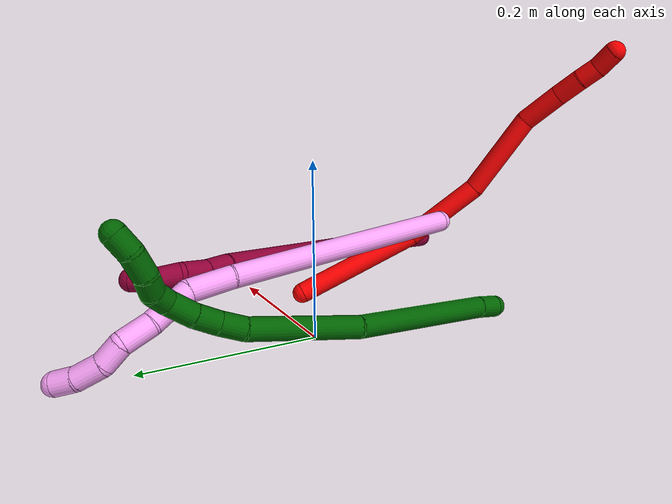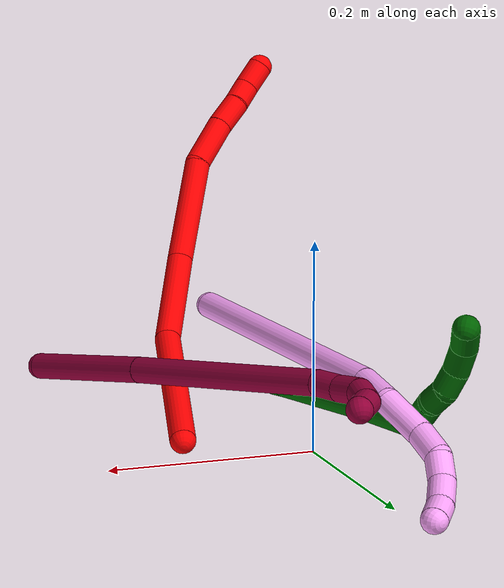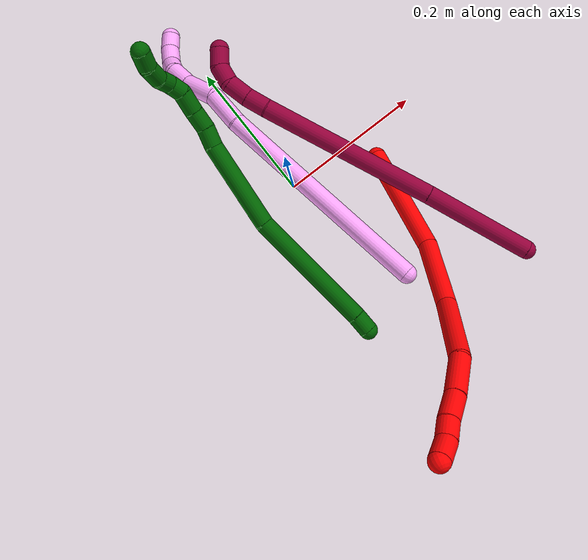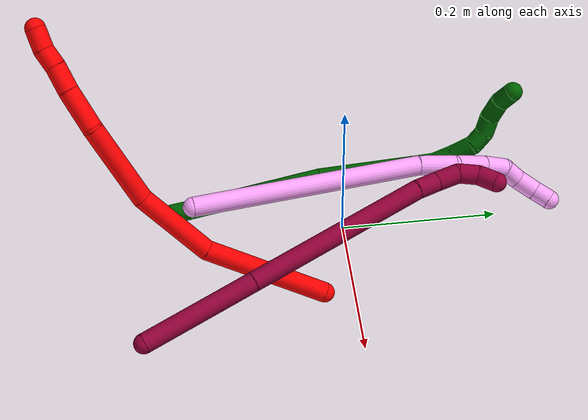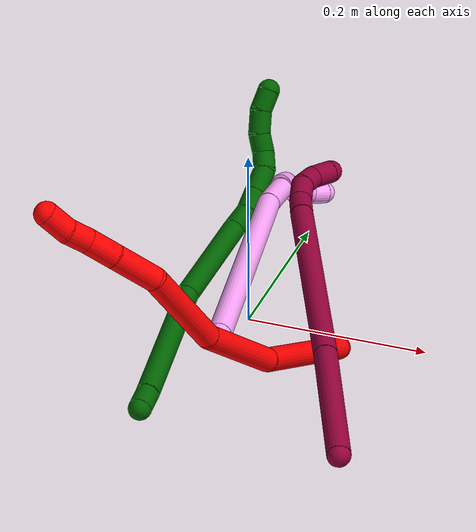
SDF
<sdf version="1.7">
 <world name="default">
  <model name="photoneo_s_sensor">
   <static>1</static>
   <pose>0 0 2 1.57079 1.57079 3.14159</pose>
   <link name="link">
    <inertial><mass>0.1</mass></inertial>
    <sensor name="sensor" type="depth">
     <update_rate>30</update_rate>
     <camera>
      <horizontal_fov>1.22</horizontal_fov>
      <image><width>1920</width><height>1200</height><format>B8G8R8</format></image>
      <clip><near>0.1</near><far>4</far></clip>
      <depth_camera><output>points</output></depth_camera>
     </camera>
     <plugin name="camera_plugin" filename="libgazebo_ros_depth_camera.so">
      <baseline>0.2</baseline>
      <alwaysOn>1</alwaysOn>
      <updateRate>0.0</updateRate>
      <cameraName>camera_ir</cameraName>
      <imageTopicName>/camera/color/image_raw</imageTopicName>
      <cameraInfoTopicName>/camera/color/camera_info</cameraInfoTopicName>
      <depthImageTopicName>/camera/depth/image_raw</depthImageTopicName>
      <depthImageCameraInfoTopicName>/camera/depth/camera_info</depthImageCameraInfoTopicName>
      <pointCloudTopicName>/camera/depth/points</pointCloudTopicName>
      <frameName>fr_optical</frameName>
      <pointCloudCutoff>0.1</pointCloudCutoff>
      <pointCloudCutoffMax>2.0</pointCloudCutoffMax>
      <distortionK1>0</distortionK1>
      <distortionK2>0</distortionK2>
      <distortionK3>0</distortionK3>
      <distortionT1>0</distortionT1>
      <distortionT2>0</distortionT2>
      <CxPrime>0</CxPrime>
      <Cx>0</Cx>
      <Cy>0</Cy>
      <focalLength>0</focalLength>
      <hackBaseline>0</hackBaseline>
     </plugin>
    </sensor>
   </link>
  </model>
  <model name="2">
   <static>0</static>
   <link name="2">
    <collision name="collision-cylinder-e_1_1_4">
     <pose>0.000123 0.001715 0.078644 -0.021802 0.001563 -1.7e-05</pose>
     <geometry><cylinder><radius>0.0125</radius><length>0.157325</length></cylinder></geometry>
     <surface>
      <friction><ode><mu>1.16</mu><mu2>1.16</mu2><slip1>0</slip1><slip2>0</slip2></ode></friction>
      <contact><ode><kp>1e+06</kp><kd>1</kd><max_vel>0</max_vel><min_depth>0.001</min_depth></ode></contact>
     </surface>
    </collision>
    <visual name="visual-cylinder-e_1_1_4">
     <pose>0.000123 0.001715 0.078644 -0.021802 0.001563 -1.7e-05</pose>
     <geometry><cylinder><radius>0.0125</radius><length>0.157325</length></cylinder></geometry>
     <material><ambient>1 0 0 1</ambient></material>
    </visual>
    <collision name="collision-cylinder-e_2_4_5">
     <pose>-0.004645 -0.011169 0.205609 0.293395 -0.096586 -0.014282</pose>
     <geometry><cylinder><radius>0.0125</radius><length>0.10143</length></cylinder></geometry>
     <surface>
      <friction><ode><mu>1.16</mu><mu2>1.16</mu2><slip1>0</slip1><slip2>0</slip2></ode></friction>
      <contact><ode><kp>1e+06</kp><kd>1</kd><max_vel>0</max_vel><min_depth>0.001</min_depth></ode></contact>
     </surface>
    </collision>
    <visual name="visual-cylinder-e_2_4_5">
     <pose>-0.004645 -0.011169 0.205609 0.293395 -0.096586 -0.014282</pose>
     <geometry><cylinder><radius>0.0125</radius><length>0.10143</length></cylinder></geometry>
     <material><ambient>1 0 0 1</ambient></material>
    </visual>
    <collision name="collision-cylinder-e_3_5_6">
     <pose>-0.026371 -0.051005 0.297753 0.522515 -0.321368 -0.086617</pose>
     <geometry><cylinder><radius>0.0125</radius><length>0.106598</length></cylinder></geometry>
     <surface>
      <friction><ode><mu>1.16</mu><mu2>1.16</mu2><slip1>0</slip1><slip2>0</slip2></ode></friction>
      <contact><ode><kp>1e+06</kp><kd>1</kd><max_vel>0</max_vel><min_depth>0.001</min_depth></ode></contact>
     </surface>
    </collision>
    <visual name="visual-cylinder-e_3_5_6">
     <pose>-0.026371 -0.051005 0.297753 0.522515 -0.321368 -0.086617</pose>
     <geometry><cylinder><radius>0.0125</radius><length>0.106598</length></cylinder></geometry>
     <material><ambient>1 0 0 1</ambient></material>
    </visual>
    <collision name="collision-cylinder-e_4_6_7">
     <pose>-0.043287 -0.091571 0.36221 0.638892 -0.003131 -0.001036</pose>
     <geometry><cylinder><radius>0.0125</radius><length>0.051409</length></cylinder></geometry>
     <surface>
      <friction><ode><mu>1.16</mu><mu2>1.16</mu2><slip1>0</slip1><slip2>0</slip2></ode></friction>
      <contact><ode><kp>1e+06</kp><kd>1</kd><max_vel>0</max_vel><min_depth>0.001</min_depth></ode></contact>
     </surface>
    </collision>
    <visual name="visual-cylinder-e_4_6_7">
     <pose>-0.043287 -0.091571 0.36221 0.638892 -0.003131 -0.001036</pose>
     <geometry><cylinder><radius>0.0125</radius><length>0.051409</length></cylinder></geometry>
     <material><ambient>1 0 0 1</ambient></material>
    </visual>
    <collision name="collision-cylinder-e_5_7_8">
     <pose>-0.042567 -0.117716 0.394918 0.730582 0.049312 0.018863</pose>
     <geometry><cylinder><radius>0.0125</radius><length>0.032462</length></cylinder></geometry>
     <surface>
      <friction><ode><mu>1.16</mu><mu2>1.16</mu2><slip1>0</slip1><slip2>0</slip2></ode></friction>
      <contact><ode><kp>1e+06</kp><kd>1</kd><max_vel>0</max_vel><min_depth>0.001</min_depth></ode></contact>
     </surface>
    </collision>
    <visual name="visual-cylinder-e_5_7_8">
     <pose>-0.042567 -0.117716 0.394918 0.730582 0.049312 0.018863</pose>
     <geometry><cylinder><radius>0.0125</radius><length>0.032462</length></cylinder></geometry>
     <material><ambient>1 0 0 1</ambient></material>
    </visual>
    <collision name="collision-cylinder-e_6_8_9">
     <pose>-0.04125 -0.135214 0.416818 0.597041 0.043469 0.013378</pose>
     <geometry><cylinder><radius>0.0125</radius><length>0.023786</length></cylinder></geometry>
     <surface>
      <friction><ode><mu>1.16</mu><mu2>1.16</mu2><slip1>0</slip1><slip2>0</slip2></ode></friction>
      <contact><ode><kp>1e+06</kp><kd>1</kd><max_vel>0</max_vel><min_depth>0.001</min_depth></ode></contact>
     </surface>
    </collision>
    <visual name="visual-cylinder-e_6_8_9">
     <pose>-0.04125 -0.135214 0.416818 0.597041 0.043469 0.013378</pose>
     <geometry><cylinder><radius>0.0125</radius><length>0.023786</length></cylinder></geometry>
     <material><ambient>1 0 0 1</ambient></material>
    </visual>
    <collision name="collision-cylinder-e_7_9_2">
     <pose>-0.041769 -0.15179 0.435761 0.826381 -0.076819 -0.033693</pose>
     <geometry><cylinder><radius>0.0125</radius><length>0.02699</length></cylinder></geometry>
     <surface>
      <friction><ode><mu>1.16</mu><mu2>1.16</mu2><slip1>0</slip1><slip2>0</slip2></ode></friction>
      <contact><ode><kp>1e+06</kp><kd>1</kd><max_vel>0</max_vel><min_depth>0.001</min_depth></ode></contact>
     </surface>
    </collision>
    <visual name="visual-cylinder-e_7_9_2">
     <pose>-0.041769 -0.15179 0.435761 0.826381 -0.076819 -0.033693</pose>
     <geometry><cylinder><radius>0.0125</radius><length>0.02699</length></cylinder></geometry>
     <material><ambient>1 0 0 1</ambient></material>
    </visual>
    <collision name="collision-sphere-2">
     <pose>-0.042805 -0.161686 0.444878 0 -0 0</pose>
     <geometry><sphere><radius>0.0125</radius></sphere></geometry>
     <surface>
      <friction><ode><mu>1.16</mu><mu2>1.16</mu2><slip1>0</slip1><slip2>0</slip2></ode></friction>
      <contact><ode><kp>1e+06</kp><kd>1</kd><max_vel>0</max_vel><min_depth>0.001</min_depth></ode></contact>
     </surface>
    </collision>
    <visual name="visual-sphere-2">
     <pose>-0.042805 -0.161686 0.444878 0 -0 0</pose>
     <geometry><sphere><radius>0.0125</radius></sphere></geometry>
     <material><ambient>1 0 0 1</ambient></material>
    </visual>
    <collision name="collision-sphere-9">
     <pose>-0.040733 -0.141894 0.426645 0 -0 0</pose>
     <geometry><sphere><radius>0.0125</radius></sphere></geometry>
     <surface>
      <friction><ode><mu>1.16</mu><mu2>1.16</mu2><slip1>0</slip1><slip2>0</slip2></ode></friction>
      <contact><ode><kp>1e+06</kp><kd>1</kd><max_vel>0</max_vel><min_depth>0.001</min_depth></ode></contact>
     </surface>
    </collision>
    <visual name="visual-sphere-9">
     <pose>-0.040733 -0.141894 0.426645 0 -0 0</pose>
     <geometry><sphere><radius>0.0125</radius></sphere></geometry>
     <material><ambient>1 0 0 1</ambient></material>
    </visual>
    <collision name="collision-sphere-4">
     <pose>0.000246 0.00343 0.157287 0 -0 0</pose>
     <geometry><sphere><radius>0.0125</radius></sphere></geometry>
     <surface>
      <friction><ode><mu>1.16</mu><mu2>1.16</mu2><slip1>0</slip1><slip2>0</slip2></ode></friction>
      <contact><ode><kp>1e+06</kp><kd>1</kd><max_vel>0</max_vel><min_depth>0.001</min_depth></ode></contact>
     </surface>
    </collision>
    <visual name="visual-sphere-4">
     <pose>0.000246 0.00343 0.157287 0 -0 0</pose>
     <geometry><sphere><radius>0.0125</radius></sphere></geometry>
     <material><ambient>1 0 0 1</ambient></material>
    </visual>
    <collision name="collision-sphere-1">
     <geometry><sphere><radius>0.0125</radius></sphere></geometry>
     <surface>
      <friction><ode><mu>1.16</mu><mu2>1.16</mu2><slip1>0</slip1><slip2>0</slip2></ode></friction>
      <contact><ode><kp>1e+06</kp><kd>1</kd><max_vel>0</max_vel><min_depth>0.001</min_depth></ode></contact>
     </surface>
    </collision>
    <visual name="visual-sphere-1">
     <geometry><sphere><radius>0.0125</radius></sphere></geometry>
     <material><ambient>1 0 0 1</ambient></material>
    </visual>
    <collision name="collision-sphere-8">
     <pose>-0.041767 -0.128534 0.406992 0 -0 0</pose>
     <geometry><sphere><radius>0.0125</radius></sphere></geometry>
     <surface>
      <friction><ode><mu>1.16</mu><mu2>1.16</mu2><slip1>0</slip1><slip2>0</slip2></ode></friction>
      <contact><ode><kp>1e+06</kp><kd>1</kd><max_vel>0</max_vel><min_depth>0.001</min_depth></ode></contact>
     </surface>
    </collision>
    <visual name="visual-sphere-8">
     <pose>-0.041767 -0.128534 0.406992 0 -0 0</pose>
     <geometry><sphere><radius>0.0125</radius></sphere></geometry>
     <material><ambient>1 0 0 1</ambient></material>
    </visual>
    <collision name="collision-sphere-5">
     <pose>-0.009536 -0.025768 0.253931 0 -0 0</pose>
     <geometry><sphere><radius>0.0125</radius></sphere></geometry>
     <surface>
      <friction><ode><mu>1.16</mu><mu2>1.16</mu2><slip1>0</slip1><slip2>0</slip2></ode></friction>
      <contact><ode><kp>1e+06</kp><kd>1</kd><max_vel>0</max_vel><min_depth>0.001</min_depth></ode></contact>
     </surface>
    </collision>
    <visual name="visual-sphere-5">
     <pose>-0.009536 -0.025768 0.253931 0 -0 0</pose>
     <geometry><sphere><radius>0.0125</radius></sphere></geometry>
     <material><ambient>1 0 0 1</ambient></material>
    </visual>
    <collision name="collision-sphere-6">
     <pose>-0.043206 -0.076243 0.341576 0 -0 0</pose>
     <geometry><sphere><radius>0.0125</radius></sphere></geometry>
     <surface>
      <friction><ode><mu>1.16</mu><mu2>1.16</mu2><slip1>0</slip1><slip2>0</slip2></ode></friction>
      <contact><ode><kp>1e+06</kp><kd>1</kd><max_vel>0</max_vel><min_depth>0.001</min_depth></ode></contact>
     </surface>
    </collision>
    <visual name="visual-sphere-6">
     <pose>-0.043206 -0.076243 0.341576 0 -0 0</pose>
     <geometry><sphere><radius>0.0125</radius></sphere></geometry>
     <material><ambient>1 0 0 1</ambient></material>
    </visual>
    <collision name="collision-sphere-7">
     <pose>-0.043367 -0.106898 0.382844 0 -0 0</pose>
     <geometry><sphere><radius>0.0125</radius></sphere></geometry>
     <surface>
      <friction><ode><mu>1.16</mu><mu2>1.16</mu2><slip1>0</slip1><slip2>0</slip2></ode></friction>
      <contact><ode><kp>1e+06</kp><kd>1</kd><max_vel>0</max_vel><min_depth>0.001</min_depth></ode></contact>
     </surface>
    </collision>
    <visual name="visual-sphere-7">
     <pose>-0.043367 -0.106898 0.382844 0 -0 0</pose>
     <geometry><sphere><radius>0.0125</radius></sphere></geometry>
     <material><ambient>1 0 0 1</ambient></material>
    </visual>
    <inertial>
     <pose>-0.017957 -0.044284 0.236168 0 -0 0</pose>
     <mass>0.5</mass>
     <inertia>
      <ixx>0.000529</ixx>
      <ixy>0</ixy>
      <ixz>0</ixz>
      <iyy>0.000505</iyy>
      <iyz>0</iyz>
      <izz>0.000159</izz>
     </inertia>
    </inertial>
   </link>
   <pose>0.115533 -0.038536 0.011485 -0.89335 0.852437 -2.83342</pose>
  </model>
  <model name="4">
   <static>0</static>
   <link name="4">
    <collision name="collision-cylinder-e_1_1_4">
     <pose>0.012036 0.01284 0.14572 -0.087888 0.082094 -0.003612</pose>
     <geometry><cylinder><radius>0.0125</radius><length>0.293558</length></cylinder></geometry>
     <surface>
      <friction><ode><mu>1.16</mu><mu2>1.16</mu2><slip1>0</slip1><slip2>0</slip2></ode></friction>
      <contact><ode><kp>1e+06</kp><kd>1</kd><max_vel>0</max_vel><min_depth>0.001</min_depth></ode></contact>
     </surface>
    </collision>
    <visual name="visual-cylinder-e_1_1_4">
     <pose>0.012036 0.01284 0.14572 -0.087888 0.082094 -0.003612</pose>
     <geometry><cylinder><radius>0.0125</radius><length>0.293558</length></cylinder></geometry>
     <material><ambient>1 0.65098 0.996078 1</ambient></material>
    </visual>
    <collision name="collision-cylinder-e_2_4_5">
     <pose>0.026381 0.031629 0.314626 -0.251166 0.096152 -0.012148</pose>
     <geometry><cylinder><radius>0.0125</radius><length>0.048094</length></cylinder></geometry>
     <surface>
      <friction><ode><mu>1.16</mu><mu2>1.16</mu2><slip1>0</slip1><slip2>0</slip2></ode></friction>
      <contact><ode><kp>1e+06</kp><kd>1</kd><max_vel>0</max_vel><min_depth>0.001</min_depth></ode></contact>
     </surface>
    </collision>
    <visual name="visual-cylinder-e_2_4_5">
     <pose>0.026381 0.031629 0.314626 -0.251166 0.096152 -0.012148</pose>
     <geometry><cylinder><radius>0.0125</radius><length>0.048094</length></cylinder></geometry>
     <material><ambient>1 0.65098 0.996078 1</ambient></material>
    </visual>
    <collision name="collision-cylinder-e_3_5_6">
     <pose>0.020673 0.043043 0.36016 -0.239829 -0.335284 0.040776</pose>
     <geometry><cylinder><radius>0.0125</radius><length>0.048729</length></cylinder></geometry>
     <surface>
      <friction><ode><mu>1.16</mu><mu2>1.16</mu2><slip1>0</slip1><slip2>0</slip2></ode></friction>
      <contact><ode><kp>1e+06</kp><kd>1</kd><max_vel>0</max_vel><min_depth>0.001</min_depth></ode></contact>
     </surface>
    </collision>
    <visual name="visual-cylinder-e_3_5_6">
     <pose>0.020673 0.043043 0.36016 -0.239829 -0.335284 0.040776</pose>
     <geometry><cylinder><radius>0.0125</radius><length>0.048729</length></cylinder></geometry>
     <material><ambient>1 0.65098 0.996078 1</ambient></material>
    </visual>
    <collision name="collision-cylinder-e_4_6_7">
     <pose>0.010184 0.054221 0.397692 -0.359828 -0.151247 0.02756</pose>
     <geometry><cylinder><radius>0.0125</radius><length>0.032819</length></cylinder></geometry>
     <surface>
      <friction><ode><mu>1.16</mu><mu2>1.16</mu2><slip1>0</slip1><slip2>0</slip2></ode></friction>
      <contact><ode><kp>1e+06</kp><kd>1</kd><max_vel>0</max_vel><min_depth>0.001</min_depth></ode></contact>
     </surface>
    </collision>
    <visual name="visual-cylinder-e_4_6_7">
     <pose>0.010184 0.054221 0.397692 -0.359828 -0.151247 0.02756</pose>
     <geometry><cylinder><radius>0.0125</radius><length>0.032819</length></cylinder></geometry>
     <material><ambient>1 0.65098 0.996078 1</ambient></material>
    </visual>
    <collision name="collision-cylinder-e_5_7_8">
     <pose>0.004078 0.068929 0.420883 -0.843443 -0.292974 0.132195</pose>
     <geometry><cylinder><radius>0.0125</radius><length>0.02516</length></cylinder></geometry>
     <surface>
      <friction><ode><mu>1.16</mu><mu2>1.16</mu2><slip1>0</slip1><slip2>0</slip2></ode></friction>
      <contact><ode><kp>1e+06</kp><kd>1</kd><max_vel>0</max_vel><min_depth>0.001</min_depth></ode></contact>
     </surface>
    </collision>
    <visual name="visual-cylinder-e_5_7_8">
     <pose>0.004078 0.068929 0.420883 -0.843443 -0.292974 0.132195</pose>
     <geometry><cylinder><radius>0.0125</radius><length>0.02516</length></cylinder></geometry>
     <material><ambient>1 0.65098 0.996078 1</ambient></material>
    </visual>
    <collision name="collision-cylinder-e_6_8_9">
     <pose>0.001735 0.088645 0.438579 -0.835964 0.089056 -0.039576</pose>
     <geometry><cylinder><radius>0.0125</radius><length>0.029013</length></cylinder></geometry>
     <surface>
      <friction><ode><mu>1.16</mu><mu2>1.16</mu2><slip1>0</slip1><slip2>0</slip2></ode></friction>
      <contact><ode><kp>1e+06</kp><kd>1</kd><max_vel>0</max_vel><min_depth>0.001</min_depth></ode></contact>
     </surface>
    </collision>
    <visual name="visual-cylinder-e_6_8_9">
     <pose>0.001735 0.088645 0.438579 -0.835964 0.089056 -0.039576</pose>
     <geometry><cylinder><radius>0.0125</radius><length>0.029013</length></cylinder></geometry>
     <material><ambient>1 0.65098 0.996078 1</ambient></material>
    </visual>
    <collision name="collision-cylinder-e_7_9_2">
     <pose>0.006876 0.107608 0.454991 -0.886469 0.347329 -0.166185</pose>
     <geometry><cylinder><radius>0.0125</radius><length>0.022627</length></cylinder></geometry>
     <surface>
      <friction><ode><mu>1.16</mu><mu2>1.16</mu2><slip1>0</slip1><slip2>0</slip2></ode></friction>
      <contact><ode><kp>1e+06</kp><kd>1</kd><max_vel>0</max_vel><min_depth>0.001</min_depth></ode></contact>
     </surface>
    </collision>
    <visual name="visual-cylinder-e_7_9_2">
     <pose>0.006876 0.107608 0.454991 -0.886469 0.347329 -0.166185</pose>
     <geometry><cylinder><radius>0.0125</radius><length>0.022627</length></cylinder></geometry>
     <material><ambient>1 0.65098 0.996078 1</ambient></material>
    </visual>
    <collision name="collision-sphere-2">
     <pose>0.010727 0.115851 0.461716 0 -0 0</pose>
     <geometry><sphere><radius>0.0125</radius></sphere></geometry>
     <surface>
      <friction><ode><mu>1.16</mu><mu2>1.16</mu2><slip1>0</slip1><slip2>0</slip2></ode></friction>
      <contact><ode><kp>1e+06</kp><kd>1</kd><max_vel>0</max_vel><min_depth>0.001</min_depth></ode></contact>
     </surface>
    </collision>
    <visual name="visual-sphere-2">
     <pose>0.010727 0.115851 0.461716 0 -0 0</pose>
     <geometry><sphere><radius>0.0125</radius></sphere></geometry>
     <material><ambient>1 0.65098 0.996078 1</ambient></material>
    </visual>
    <collision name="collision-sphere-9">
     <pose>0.003025 0.099365 0.448266 0 -0 0</pose>
     <geometry><sphere><radius>0.0125</radius></sphere></geometry>
     <surface>
      <friction><ode><mu>1.16</mu><mu2>1.16</mu2><slip1>0</slip1><slip2>0</slip2></ode></friction>
      <contact><ode><kp>1e+06</kp><kd>1</kd><max_vel>0</max_vel><min_depth>0.001</min_depth></ode></contact>
     </surface>
    </collision>
    <visual name="visual-sphere-9">
     <pose>0.003025 0.099365 0.448266 0 -0 0</pose>
     <geometry><sphere><radius>0.0125</radius></sphere></geometry>
     <material><ambient>1 0.65098 0.996078 1</ambient></material>
    </visual>
    <collision name="collision-sphere-4">
     <pose>0.024072 0.02568 0.29144 0 -0 0</pose>
     <geometry><sphere><radius>0.0125</radius></sphere></geometry>
     <surface>
      <friction><ode><mu>1.16</mu><mu2>1.16</mu2><slip1>0</slip1><slip2>0</slip2></ode></friction>
      <contact><ode><kp>1e+06</kp><kd>1</kd><max_vel>0</max_vel><min_depth>0.001</min_depth></ode></contact>
     </surface>
    </collision>
    <visual name="visual-sphere-4">
     <pose>0.024072 0.02568 0.29144 0 -0 0</pose>
     <geometry><sphere><radius>0.0125</radius></sphere></geometry>
     <material><ambient>1 0.65098 0.996078 1</ambient></material>
    </visual>
    <collision name="collision-sphere-1">
     <geometry><sphere><radius>0.0125</radius></sphere></geometry>
     <surface>
      <friction><ode><mu>1.16</mu><mu2>1.16</mu2><slip1>0</slip1><slip2>0</slip2></ode></friction>
      <contact><ode><kp>1e+06</kp><kd>1</kd><max_vel>0</max_vel><min_depth>0.001</min_depth></ode></contact>
     </surface>
    </collision>
    <visual name="visual-sphere-1">
     <geometry><sphere><radius>0.0125</radius></sphere></geometry>
     <material><ambient>1 0.65098 0.996078 1</ambient></material>
    </visual>
    <collision name="collision-sphere-8">
     <pose>0.000445 0.077925 0.428891 0 -0 0</pose>
     <geometry><sphere><radius>0.0125</radius></sphere></geometry>
     <surface>
      <friction><ode><mu>1.16</mu><mu2>1.16</mu2><slip1>0</slip1><slip2>0</slip2></ode></friction>
      <contact><ode><kp>1e+06</kp><kd>1</kd><max_vel>0</max_vel><min_depth>0.001</min_depth></ode></contact>
     </surface>
    </collision>
    <visual name="visual-sphere-8">
     <pose>0.000445 0.077925 0.428891 0 -0 0</pose>
     <geometry><sphere><radius>0.0125</radius></sphere></geometry>
     <material><ambient>1 0.65098 0.996078 1</ambient></material>
    </visual>
    <collision name="collision-sphere-5">
     <pose>0.028689 0.037578 0.337811 0 -0 0</pose>
     <geometry><sphere><radius>0.0125</radius></sphere></geometry>
     <surface>
      <friction><ode><mu>1.16</mu><mu2>1.16</mu2><slip1>0</slip1><slip2>0</slip2></ode></friction>
      <contact><ode><kp>1e+06</kp><kd>1</kd><max_vel>0</max_vel><min_depth>0.001</min_depth></ode></contact>
     </surface>
    </collision>
    <visual name="visual-sphere-5">
     <pose>0.028689 0.037578 0.337811 0 -0 0</pose>
     <geometry><sphere><radius>0.0125</radius></sphere></geometry>
     <material><ambient>1 0.65098 0.996078 1</ambient></material>
    </visual>
    <collision name="collision-sphere-6">
     <pose>0.012656 0.048509 0.382509 0 -0 0</pose>
     <geometry><sphere><radius>0.0125</radius></sphere></geometry>
     <surface>
      <friction><ode><mu>1.16</mu><mu2>1.16</mu2><slip1>0</slip1><slip2>0</slip2></ode></friction>
      <contact><ode><kp>1e+06</kp><kd>1</kd><max_vel>0</max_vel><min_depth>0.001</min_depth></ode></contact>
     </surface>
    </collision>
    <visual name="visual-sphere-6">
     <pose>0.012656 0.048509 0.382509 0 -0 0</pose>
     <geometry><sphere><radius>0.0125</radius></sphere></geometry>
     <material><ambient>1 0.65098 0.996078 1</ambient></material>
    </visual>
    <collision name="collision-sphere-7">
     <pose>0.007711 0.059932 0.412875 0 -0 0</pose>
     <geometry><sphere><radius>0.0125</radius></sphere></geometry>
     <surface>
      <friction><ode><mu>1.16</mu><mu2>1.16</mu2><slip1>0</slip1><slip2>0</slip2></ode></friction>
      <contact><ode><kp>1e+06</kp><kd>1</kd><max_vel>0</max_vel><min_depth>0.001</min_depth></ode></contact>
     </surface>
    </collision>
    <visual name="visual-sphere-7">
     <pose>0.007711 0.059932 0.412875 0 -0 0</pose>
     <geometry><sphere><radius>0.0125</radius></sphere></geometry>
     <material><ambient>1 0.65098 0.996078 1</ambient></material>
    </visual>
    <inertial>
     <pose>0.012904 0.031817 0.24424 0 -0 0</pose>
     <mass>0.5</mass>
     <inertia>
      <ixx>0.002139</ixx>
      <ixy>0</ixy>
      <ixz>0</ixz>
      <iyy>0.002144</iyy>
      <iyz>0</iyz>
      <izz>-0.000332</izz>
     </inertia>
    </inertial>
   </link>
   <pose>0.037443 -0.191165 0.102608 -1.63125 -0.810777 0.333908</pose>
  </model>
  <model name="6">
   <static>0</static>
   <link name="6">
    <collision name="collision-cylinder-e_1_1_4">
     <pose>-0.000261 0.011482 0.004635 -1.18714 -0.021098 0.014236</pose>
     <geometry><cylinder><radius>0.0125</radius><length>0.02477</length></cylinder></geometry>
     <surface>
      <friction><ode><mu>1.16</mu><mu2>1.16</mu2><slip1>0</slip1><slip2>0</slip2></ode></friction>
      <contact><ode><kp>1e+06</kp><kd>1</kd><max_vel>0</max_vel><min_depth>0.001</min_depth></ode></contact>
     </surface>
    </collision>
    <visual name="visual-cylinder-e_1_1_4">
     <pose>-0.000261 0.011482 0.004635 -1.18714 -0.021098 0.014236</pose>
     <geometry><cylinder><radius>0.0125</radius><length>0.02477</length></cylinder></geometry>
     <material><ambient>0 0.392157 0.003922 1</ambient></material>
    </visual>
    <collision name="collision-cylinder-e_2_4_5">
     <pose>0.005435 0.103467 0.042107 -1.1835 0.068414 -0.04599</pose>
     <geometry><cylinder><radius>0.0125</radius><length>0.174291</length></cylinder></geometry>
     <surface>
      <friction><ode><mu>1.16</mu><mu2>1.16</mu2><slip1>0</slip1><slip2>0</slip2></ode></friction>
      <contact><ode><kp>1e+06</kp><kd>1</kd><max_vel>0</max_vel><min_depth>0.001</min_depth></ode></contact>
     </surface>
    </collision>
    <visual name="visual-cylinder-e_2_4_5">
     <pose>0.005435 0.103467 0.042107 -1.1835 0.068414 -0.04599</pose>
     <geometry><cylinder><radius>0.0125</radius><length>0.174291</length></cylinder></geometry>
     <material><ambient>0 0.392157 0.003922 1</ambient></material>
    </visual>
    <collision name="collision-cylinder-e_3_5_6">
     <pose>0.00303 0.239469 0.100774 -1.13519 -0.135752 0.086632</pose>
     <geometry><cylinder><radius>0.0125</radius><length>0.123571</length></cylinder></geometry>
     <surface>
      <friction><ode><mu>1.16</mu><mu2>1.16</mu2><slip1>0</slip1><slip2>0</slip2></ode></friction>
      <contact><ode><kp>1e+06</kp><kd>1</kd><max_vel>0</max_vel><min_depth>0.001</min_depth></ode></contact>
     </surface>
    </collision>
    <visual name="visual-cylinder-e_3_5_6">
     <pose>0.00303 0.239469 0.100774 -1.13519 -0.135752 0.086632</pose>
     <geometry><cylinder><radius>0.0125</radius><length>0.123571</length></cylinder></geometry>
     <material><ambient>0 0.392157 0.003922 1</ambient></material>
    </visual>
    <collision name="collision-cylinder-e_4_6_7">
     <pose>-0.010234 0.30692 0.130895 -1.22616 -0.368451 0.260697</pose>
     <geometry><cylinder><radius>0.0125</radius><length>0.027221</length></cylinder></geometry>
     <surface>
      <friction><ode><mu>1.16</mu><mu2>1.16</mu2><slip1>0</slip1><slip2>0</slip2></ode></friction>
      <contact><ode><kp>1e+06</kp><kd>1</kd><max_vel>0</max_vel><min_depth>0.001</min_depth></ode></contact>
     </surface>
    </collision>
    <visual name="visual-cylinder-e_4_6_7">
     <pose>-0.010234 0.30692 0.130895 -1.22616 -0.368451 0.260697</pose>
     <geometry><cylinder><radius>0.0125</radius><length>0.027221</length></cylinder></geometry>
     <material><ambient>0 0.392157 0.003922 1</ambient></material>
    </visual>
    <collision name="collision-cylinder-e_5_7_8">
     <pose>-0.018386 0.331884 0.136891 -1.44048 -0.242768 0.213267</pose>
     <geometry><cylinder><radius>0.0125</radius><length>0.027043</length></cylinder></geometry>
     <surface>
      <friction><ode><mu>1.16</mu><mu2>1.16</mu2><slip1>0</slip1><slip2>0</slip2></ode></friction>
      <contact><ode><kp>1e+06</kp><kd>1</kd><max_vel>0</max_vel><min_depth>0.001</min_depth></ode></contact>
     </surface>
    </collision>
    <visual name="visual-cylinder-e_5_7_8">
     <pose>-0.018386 0.331884 0.136891 -1.44048 -0.242768 0.213267</pose>
     <geometry><cylinder><radius>0.0125</radius><length>0.027043</length></cylinder></geometry>
     <material><ambient>0 0.392157 0.003922 1</ambient></material>
    </visual>
    <collision name="collision-cylinder-e_6_8_9">
     <pose>-0.026734 0.35893 0.138855 -1.55233 -0.348412 0.34216</pose>
     <geometry><cylinder><radius>0.0125</radius><length>0.029864</length></cylinder></geometry>
     <surface>
      <friction><ode><mu>1.16</mu><mu2>1.16</mu2><slip1>0</slip1><slip2>0</slip2></ode></friction>
      <contact><ode><kp>1e+06</kp><kd>1</kd><max_vel>0</max_vel><min_depth>0.001</min_depth></ode></contact>
     </surface>
    </collision>
    <visual name="visual-cylinder-e_6_8_9">
     <pose>-0.026734 0.35893 0.138855 -1.55233 -0.348412 0.34216</pose>
     <geometry><cylinder><radius>0.0125</radius><length>0.029864</length></cylinder></geometry>
     <material><ambient>0 0.392157 0.003922 1</ambient></material>
    </visual>
    <collision name="collision-cylinder-e_7_9_10">
     <pose>-0.032174 0.38292 0.136261 -1.84987 -0.033012 0.043797</pose>
     <geometry><cylinder><radius>0.0125</radius><length>0.020728</length></cylinder></geometry>
     <surface>
      <friction><ode><mu>1.16</mu><mu2>1.16</mu2><slip1>0</slip1><slip2>0</slip2></ode></friction>
      <contact><ode><kp>1e+06</kp><kd>1</kd><max_vel>0</max_vel><min_depth>0.001</min_depth></ode></contact>
     </surface>
    </collision>
    <visual name="visual-cylinder-e_7_9_10">
     <pose>-0.032174 0.38292 0.136261 -1.84987 -0.033012 0.043797</pose>
     <geometry><cylinder><radius>0.0125</radius><length>0.020728</length></cylinder></geometry>
     <material><ambient>0 0.392157 0.003922 1</ambient></material>
    </visual>
    <collision name="collision-cylinder-e_8_10_11">
     <pose>-0.033874 0.401102 0.126315 -2.28245 -0.124362 0.270168</pose>
     <geometry><cylinder><radius>0.0125</radius><length>0.021891</length></cylinder></geometry>
     <surface>
      <friction><ode><mu>1.16</mu><mu2>1.16</mu2><slip1>0</slip1><slip2>0</slip2></ode></friction>
      <contact><ode><kp>1e+06</kp><kd>1</kd><max_vel>0</max_vel><min_depth>0.001</min_depth></ode></contact>
     </surface>
    </collision>
    <visual name="visual-cylinder-e_8_10_11">
     <pose>-0.033874 0.401102 0.126315 -2.28245 -0.124362 0.270168</pose>
     <geometry><cylinder><radius>0.0125</radius><length>0.021891</length></cylinder></geometry>
     <material><ambient>0 0.392157 0.003922 1</ambient></material>
    </visual>
    <collision name="collision-cylinder-e_9_11_12">
     <pose>-0.039825 0.41988 0.112752 -2.12075 -0.355295 0.620597</pose>
     <geometry><cylinder><radius>0.0125</radius><length>0.026405</length></cylinder></geometry>
     <surface>
      <friction><ode><mu>1.16</mu><mu2>1.16</mu2><slip1>0</slip1><slip2>0</slip2></ode></friction>
      <contact><ode><kp>1e+06</kp><kd>1</kd><max_vel>0</max_vel><min_depth>0.001</min_depth></ode></contact>
     </surface>
    </collision>
    <visual name="visual-cylinder-e_9_11_12">
     <pose>-0.039825 0.41988 0.112752 -2.12075 -0.355295 0.620597</pose>
     <geometry><cylinder><radius>0.0125</radius><length>0.026405</length></cylinder></geometry>
     <material><ambient>0 0.392157 0.003922 1</ambient></material>
    </visual>
    <collision name="collision-cylinder-e_10_12_2">
     <pose>-0.051015 0.440162 0.103382 -1.8606 -0.576234 0.75693</pose>
     <geometry><cylinder><radius>0.0125</radius><length>0.024215</length></cylinder></geometry>
     <surface>
      <friction><ode><mu>1.16</mu><mu2>1.16</mu2><slip1>0</slip1><slip2>0</slip2></ode></friction>
      <contact><ode><kp>1e+06</kp><kd>1</kd><max_vel>0</max_vel><min_depth>0.001</min_depth></ode></contact>
     </surface>
    </collision>
    <visual name="visual-cylinder-e_10_12_2">
     <pose>-0.051015 0.440162 0.103382 -1.8606 -0.576234 0.75693</pose>
     <geometry><cylinder><radius>0.0125</radius><length>0.024215</length></cylinder></geometry>
     <material><ambient>0 0.392157 0.003922 1</ambient></material>
    </visual>
    <collision name="collision-sphere-2">
     <pose>-0.057612 0.449892 0.10048 0 -0 0</pose>
     <geometry><sphere><radius>0.0125</radius></sphere></geometry>
     <surface>
      <friction><ode><mu>1.16</mu><mu2>1.16</mu2><slip1>0</slip1><slip2>0</slip2></ode></friction>
      <contact><ode><kp>1e+06</kp><kd>1</kd><max_vel>0</max_vel><min_depth>0.001</min_depth></ode></contact>
     </surface>
    </collision>
    <visual name="visual-sphere-2">
     <pose>-0.057612 0.449892 0.10048 0 -0 0</pose>
     <geometry><sphere><radius>0.0125</radius></sphere></geometry>
     <material><ambient>0 0.392157 0.003922 1</ambient></material>
    </visual>
    <collision name="collision-sphere-12">
     <pose>-0.044417 0.430433 0.106283 0 -0 0</pose>
     <geometry><sphere><radius>0.0125</radius></sphere></geometry>
     <surface>
      <friction><ode><mu>1.16</mu><mu2>1.16</mu2><slip1>0</slip1><slip2>0</slip2></ode></friction>
      <contact><ode><kp>1e+06</kp><kd>1</kd><max_vel>0</max_vel><min_depth>0.001</min_depth></ode></contact>
     </surface>
    </collision>
    <visual name="visual-sphere-12">
     <pose>-0.044417 0.430433 0.106283 0 -0 0</pose>
     <geometry><sphere><radius>0.0125</radius></sphere></geometry>
     <material><ambient>0 0.392157 0.003922 1</ambient></material>
    </visual>
    <collision name="collision-sphere-11">
     <pose>-0.035232 0.409327 0.119222 0 -0 0</pose>
     <geometry><sphere><radius>0.0125</radius></sphere></geometry>
     <surface>
      <friction><ode><mu>1.16</mu><mu2>1.16</mu2><slip1>0</slip1><slip2>0</slip2></ode></friction>
      <contact><ode><kp>1e+06</kp><kd>1</kd><max_vel>0</max_vel><min_depth>0.001</min_depth></ode></contact>
     </surface>
    </collision>
    <visual name="visual-sphere-11">
     <pose>-0.035232 0.409327 0.119222 0 -0 0</pose>
     <geometry><sphere><radius>0.0125</radius></sphere></geometry>
     <material><ambient>0 0.392157 0.003922 1</ambient></material>
    </visual>
    <collision name="collision-sphere-10">
     <pose>-0.032516 0.392878 0.133408 0 -0 0</pose>
     <geometry><sphere><radius>0.0125</radius></sphere></geometry>
     <surface>
      <friction><ode><mu>1.16</mu><mu2>1.16</mu2><slip1>0</slip1><slip2>0</slip2></ode></friction>
      <contact><ode><kp>1e+06</kp><kd>1</kd><max_vel>0</max_vel><min_depth>0.001</min_depth></ode></contact>
     </surface>
    </collision>
    <visual name="visual-sphere-10">
     <pose>-0.032516 0.392878 0.133408 0 -0 0</pose>
     <geometry><sphere><radius>0.0125</radius></sphere></geometry>
     <material><ambient>0 0.392157 0.003922 1</ambient></material>
    </visual>
    <collision name="collision-sphere-9">
     <pose>-0.031832 0.372963 0.139115 0 -0 0</pose>
     <geometry><sphere><radius>0.0125</radius></sphere></geometry>
     <surface>
      <friction><ode><mu>1.16</mu><mu2>1.16</mu2><slip1>0</slip1><slip2>0</slip2></ode></friction>
      <contact><ode><kp>1e+06</kp><kd>1</kd><max_vel>0</max_vel><min_depth>0.001</min_depth></ode></contact>
     </surface>
    </collision>
    <visual name="visual-sphere-9">
     <pose>-0.031832 0.372963 0.139115 0 -0 0</pose>
     <geometry><sphere><radius>0.0125</radius></sphere></geometry>
     <material><ambient>0 0.392157 0.003922 1</ambient></material>
    </visual>
    <collision name="collision-sphere-4">
     <pose>-0.000523 0.022965 0.00927 0 -0 0</pose>
     <geometry><sphere><radius>0.0125</radius></sphere></geometry>
     <surface>
      <friction><ode><mu>1.16</mu><mu2>1.16</mu2><slip1>0</slip1><slip2>0</slip2></ode></friction>
      <contact><ode><kp>1e+06</kp><kd>1</kd><max_vel>0</max_vel><min_depth>0.001</min_depth></ode></contact>
     </surface>
    </collision>
    <visual name="visual-sphere-4">
     <pose>-0.000523 0.022965 0.00927 0 -0 0</pose>
     <geometry><sphere><radius>0.0125</radius></sphere></geometry>
     <material><ambient>0 0.392157 0.003922 1</ambient></material>
    </visual>
    <collision name="collision-sphere-1">
     <geometry><sphere><radius>0.0125</radius></sphere></geometry>
     <surface>
      <friction><ode><mu>1.16</mu><mu2>1.16</mu2><slip1>0</slip1><slip2>0</slip2></ode></friction>
      <contact><ode><kp>1e+06</kp><kd>1</kd><max_vel>0</max_vel><min_depth>0.001</min_depth></ode></contact>
     </surface>
    </collision>
    <visual name="visual-sphere-1">
     <geometry><sphere><radius>0.0125</radius></sphere></geometry>
     <material><ambient>0 0.392157 0.003922 1</ambient></material>
    </visual>
    <collision name="collision-sphere-8">
     <pose>-0.021637 0.344898 0.138596 0 -0 0</pose>
     <geometry><sphere><radius>0.0125</radius></sphere></geometry>
     <surface>
      <friction><ode><mu>1.16</mu><mu2>1.16</mu2><slip1>0</slip1><slip2>0</slip2></ode></friction>
      <contact><ode><kp>1e+06</kp><kd>1</kd><max_vel>0</max_vel><min_depth>0.001</min_depth></ode></contact>
     </surface>
    </collision>
    <visual name="visual-sphere-8">
     <pose>-0.021637 0.344898 0.138596 0 -0 0</pose>
     <geometry><sphere><radius>0.0125</radius></sphere></geometry>
     <material><ambient>0 0.392157 0.003922 1</ambient></material>
    </visual>
    <collision name="collision-sphere-5">
     <pose>0.011392 0.183969 0.074943 0 -0 0</pose>
     <geometry><sphere><radius>0.0125</radius></sphere></geometry>
     <surface>
      <friction><ode><mu>1.16</mu><mu2>1.16</mu2><slip1>0</slip1><slip2>0</slip2></ode></friction>
      <contact><ode><kp>1e+06</kp><kd>1</kd><max_vel>0</max_vel><min_depth>0.001</min_depth></ode></contact>
     </surface>
    </collision>
    <visual name="visual-sphere-5">
     <pose>0.011392 0.183969 0.074943 0 -0 0</pose>
     <geometry><sphere><radius>0.0125</radius></sphere></geometry>
     <material><ambient>0 0.392157 0.003922 1</ambient></material>
    </visual>
    <collision name="collision-sphere-6">
     <pose>-0.005331 0.29497 0.126606 0 -0 0</pose>
     <geometry><sphere><radius>0.0125</radius></sphere></geometry>
     <surface>
      <friction><ode><mu>1.16</mu><mu2>1.16</mu2><slip1>0</slip1><slip2>0</slip2></ode></friction>
      <contact><ode><kp>1e+06</kp><kd>1</kd><max_vel>0</max_vel><min_depth>0.001</min_depth></ode></contact>
     </surface>
    </collision>
    <visual name="visual-sphere-6">
     <pose>-0.005331 0.29497 0.126606 0 -0 0</pose>
     <geometry><sphere><radius>0.0125</radius></sphere></geometry>
     <material><ambient>0 0.392157 0.003922 1</ambient></material>
    </visual>
    <collision name="collision-sphere-7">
     <pose>-0.015136 0.318871 0.135185 0 -0 0</pose>
     <geometry><sphere><radius>0.0125</radius></sphere></geometry>
     <surface>
      <friction><ode><mu>1.16</mu><mu2>1.16</mu2><slip1>0</slip1><slip2>0</slip2></ode></friction>
      <contact><ode><kp>1e+06</kp><kd>1</kd><max_vel>0</max_vel><min_depth>0.001</min_depth></ode></contact>
     </surface>
    </collision>
    <visual name="visual-sphere-7">
     <pose>-0.015136 0.318871 0.135185 0 -0 0</pose>
     <geometry><sphere><radius>0.0125</radius></sphere></geometry>
     <material><ambient>0 0.392157 0.003922 1</ambient></material>
    </visual>
    <inertial>
     <pose>-0.007909 0.228843 0.084777 0 -0 0</pose>
     <mass>0.5</mass>
     <inertia>
      <ixx>0.000618</ixx>
      <ixy>0</ixy>
      <ixz>0</ixz>
      <iyy>0.000275</iyy>
      <iyz>0</iyz>
      <izz>-0.000572</izz>
     </inertia>
    </inertial>
   </link>
   <pose>-0.040768 -0.217745 0.011497 2.61284 0.497582 3.13838</pose>
  </model>
  <model name="8">
   <static>0</static>
   <link name="8">
    <collision name="collision-cylinder-e_1_1_4">
     <pose>-0.002248 0.065338 0.037816 -1.04613 -0.029775 0.01717</pose>
     <geometry><cylinder><radius>0.0125</radius><length>0.151052</length></cylinder></geometry>
     <surface>
      <friction><ode><mu>1.16</mu><mu2>1.16</mu2><slip1>0</slip1><slip2>0</slip2></ode></friction>
      <contact><ode><kp>1e+06</kp><kd>1</kd><max_vel>0</max_vel><min_depth>0.001</min_depth></ode></contact>
     </surface>
    </collision>
    <visual name="visual-cylinder-e_1_1_4">
     <pose>-0.002248 0.065338 0.037816 -1.04613 -0.029775 0.01717</pose>
     <geometry><cylinder><radius>0.0125</radius><length>0.151052</length></cylinder></geometry>
     <material><ambient>0.584314 0 0.227451 1</ambient></material>
    </visual>
    <collision name="collision-cylinder-e_2_4_5">
     <pose>-0.004535 0.233491 0.137158 -1.03155 -0.000315 0.000179</pose>
     <geometry><cylinder><radius>0.0125</radius><length>0.239635</length></cylinder></geometry>
     <surface>
      <friction><ode><mu>1.16</mu><mu2>1.16</mu2><slip1>0</slip1><slip2>0</slip2></ode></friction>
      <contact><ode><kp>1e+06</kp><kd>1</kd><max_vel>0</max_vel><min_depth>0.001</min_depth></ode></contact>
     </surface>
    </collision>
    <visual name="visual-cylinder-e_2_4_5">
     <pose>-0.004535 0.233491 0.137158 -1.03155 -0.000315 0.000179</pose>
     <geometry><cylinder><radius>0.0125</radius><length>0.239635</length></cylinder></geometry>
     <material><ambient>0.584314 0 0.227451 1</ambient></material>
    </visual>
    <collision name="collision-cylinder-e_3_5_6">
     <pose>-0.004515 0.347578 0.207587 -0.902262 0.004007 -0.001941</pose>
     <geometry><cylinder><radius>0.0125</radius><length>0.028728</length></cylinder></geometry>
     <surface>
      <friction><ode><mu>1.16</mu><mu2>1.16</mu2><slip1>0</slip1><slip2>0</slip2></ode></friction>
      <contact><ode><kp>1e+06</kp><kd>1</kd><max_vel>0</max_vel><min_depth>0.001</min_depth></ode></contact>
     </surface>
    </collision>
    <visual name="visual-cylinder-e_3_5_6">
     <pose>-0.004515 0.347578 0.207587 -0.902262 0.004007 -0.001941</pose>
     <geometry><cylinder><radius>0.0125</radius><length>0.028728</length></cylinder></geometry>
     <material><ambient>0.584314 0 0.227451 1</ambient></material>
    </visual>
    <collision name="collision-cylinder-e_4_6_7">
     <pose>-0.00666 0.370746 0.225012 -0.949176 -0.149386 0.076852</pose>
     <geometry><cylinder><radius>0.0125</radius><length>0.029598</length></cylinder></geometry>
     <surface>
      <friction><ode><mu>1.16</mu><mu2>1.16</mu2><slip1>0</slip1><slip2>0</slip2></ode></friction>
      <contact><ode><kp>1e+06</kp><kd>1</kd><max_vel>0</max_vel><min_depth>0.001</min_depth></ode></contact>
     </surface>
    </collision>
    <visual name="visual-cylinder-e_4_6_7">
     <pose>-0.00666 0.370746 0.225012 -0.949176 -0.149386 0.076852</pose>
     <geometry><cylinder><radius>0.0125</radius><length>0.029598</length></cylinder></geometry>
     <material><ambient>0.584314 0 0.227451 1</ambient></material>
    </visual>
    <collision name="collision-cylinder-e_5_7_8">
     <pose>-0.013694 0.388838 0.243837 -0.541449 -0.382129 0.107262</pose>
     <geometry><cylinder><radius>0.0125</radius><length>0.025914</length></cylinder></geometry>
     <surface>
      <friction><ode><mu>1.16</mu><mu2>1.16</mu2><slip1>0</slip1><slip2>0</slip2></ode></friction>
      <contact><ode><kp>1e+06</kp><kd>1</kd><max_vel>0</max_vel><min_depth>0.001</min_depth></ode></contact>
     </surface>
    </collision>
    <visual name="visual-cylinder-e_5_7_8">
     <pose>-0.013694 0.388838 0.243837 -0.541449 -0.382129 0.107262</pose>
     <geometry><cylinder><radius>0.0125</radius><length>0.025914</length></cylinder></geometry>
     <material><ambient>0.584314 0 0.227451 1</ambient></material>
    </visual>
    <collision name="collision-cylinder-e_6_8_2">
     <pose>-0.027711 0.397184 0.262397 -0.254639 -0.822229 0.1115</pose>
     <geometry><cylinder><radius>0.0125</radius><length>0.025073</length></cylinder></geometry>
     <surface>
      <friction><ode><mu>1.16</mu><mu2>1.16</mu2><slip1>0</slip1><slip2>0</slip2></ode></friction>
      <contact><ode><kp>1e+06</kp><kd>1</kd><max_vel>0</max_vel><min_depth>0.001</min_depth></ode></contact>
     </surface>
    </collision>
    <visual name="visual-cylinder-e_6_8_2">
     <pose>-0.027711 0.397184 0.262397 -0.254639 -0.822229 0.1115</pose>
     <geometry><cylinder><radius>0.0125</radius><length>0.025073</length></cylinder></geometry>
     <material><ambient>0.584314 0 0.227451 1</ambient></material>
    </visual>
    <collision name="collision-sphere-2">
     <pose>-0.036896 0.399333 0.270654 0 -0 0</pose>
     <geometry><sphere><radius>0.0125</radius></sphere></geometry>
     <surface>
      <friction><ode><mu>1.16</mu><mu2>1.16</mu2><slip1>0</slip1><slip2>0</slip2></ode></friction>
      <contact><ode><kp>1e+06</kp><kd>1</kd><max_vel>0</max_vel><min_depth>0.001</min_depth></ode></contact>
     </surface>
    </collision>
    <visual name="visual-sphere-2">
     <pose>-0.036896 0.399333 0.270654 0 -0 0</pose>
     <geometry><sphere><radius>0.0125</radius></sphere></geometry>
     <material><ambient>0.584314 0 0.227451 1</ambient></material>
    </visual>
    <collision name="collision-sphere-4">
     <pose>-0.004497 0.130676 0.075633 0 -0 0</pose>
     <geometry><sphere><radius>0.0125</radius></sphere></geometry>
     <surface>
      <friction><ode><mu>1.16</mu><mu2>1.16</mu2><slip1>0</slip1><slip2>0</slip2></ode></friction>
      <contact><ode><kp>1e+06</kp><kd>1</kd><max_vel>0</max_vel><min_depth>0.001</min_depth></ode></contact>
     </surface>
    </collision>
    <visual name="visual-sphere-4">
     <pose>-0.004497 0.130676 0.075633 0 -0 0</pose>
     <geometry><sphere><radius>0.0125</radius></sphere></geometry>
     <material><ambient>0.584314 0 0.227451 1</ambient></material>
    </visual>
    <collision name="collision-sphere-1">
     <geometry><sphere><radius>0.0125</radius></sphere></geometry>
     <surface>
      <friction><ode><mu>1.16</mu><mu2>1.16</mu2><slip1>0</slip1><slip2>0</slip2></ode></friction>
      <contact><ode><kp>1e+06</kp><kd>1</kd><max_vel>0</max_vel><min_depth>0.001</min_depth></ode></contact>
     </surface>
    </collision>
    <visual name="visual-sphere-1">
     <geometry><sphere><radius>0.0125</radius></sphere></geometry>
     <material><ambient>0.584314 0 0.227451 1</ambient></material>
    </visual>
    <collision name="collision-sphere-8">
     <pose>-0.018526 0.395035 0.25414 0 -0 0</pose>
     <geometry><sphere><radius>0.0125</radius></sphere></geometry>
     <surface>
      <friction><ode><mu>1.16</mu><mu2>1.16</mu2><slip1>0</slip1><slip2>0</slip2></ode></friction>
      <contact><ode><kp>1e+06</kp><kd>1</kd><max_vel>0</max_vel><min_depth>0.001</min_depth></ode></contact>
     </surface>
    </collision>
    <visual name="visual-sphere-8">
     <pose>-0.018526 0.395035 0.25414 0 -0 0</pose>
     <geometry><sphere><radius>0.0125</radius></sphere></geometry>
     <material><ambient>0.584314 0 0.227451 1</ambient></material>
    </visual>
    <collision name="collision-sphere-5">
     <pose>-0.004572 0.336306 0.198683 0 -0 0</pose>
     <geometry><sphere><radius>0.0125</radius></sphere></geometry>
     <surface>
      <friction><ode><mu>1.16</mu><mu2>1.16</mu2><slip1>0</slip1><slip2>0</slip2></ode></friction>
      <contact><ode><kp>1e+06</kp><kd>1</kd><max_vel>0</max_vel><min_depth>0.001</min_depth></ode></contact>
     </surface>
    </collision>
    <visual name="visual-sphere-5">
     <pose>-0.004572 0.336306 0.198683 0 -0 0</pose>
     <geometry><sphere><radius>0.0125</radius></sphere></geometry>
     <material><ambient>0.584314 0 0.227451 1</ambient></material>
    </visual>
    <collision name="collision-sphere-6">
     <pose>-0.004457 0.358849 0.21649 0 -0 0</pose>
     <geometry><sphere><radius>0.0125</radius></sphere></geometry>
     <surface>
      <friction><ode><mu>1.16</mu><mu2>1.16</mu2><slip1>0</slip1><slip2>0</slip2></ode></friction>
      <contact><ode><kp>1e+06</kp><kd>1</kd><max_vel>0</max_vel><min_depth>0.001</min_depth></ode></contact>
     </surface>
    </collision>
    <visual name="visual-sphere-6">
     <pose>-0.004457 0.358849 0.21649 0 -0 0</pose>
     <geometry><sphere><radius>0.0125</radius></sphere></geometry>
     <material><ambient>0.584314 0 0.227451 1</ambient></material>
    </visual>
    <collision name="collision-sphere-7">
     <pose>-0.008862 0.382642 0.233534 0 -0 0</pose>
     <geometry><sphere><radius>0.0125</radius></sphere></geometry>
     <surface>
      <friction><ode><mu>1.16</mu><mu2>1.16</mu2><slip1>0</slip1><slip2>0</slip2></ode></friction>
      <contact><ode><kp>1e+06</kp><kd>1</kd><max_vel>0</max_vel><min_depth>0.001</min_depth></ode></contact>
     </surface>
    </collision>
    <visual name="visual-sphere-7">
     <pose>-0.008862 0.382642 0.233534 0 -0 0</pose>
     <geometry><sphere><radius>0.0125</radius></sphere></geometry>
     <material><ambient>0.584314 0 0.227451 1</ambient></material>
    </visual>
    <inertial>
     <pose>-0.005606 0.213631 0.128203 0 -0 0</pose>
     <mass>0.5</mass>
     <inertia>
      <ixx>0.001462</ixx>
      <ixy>0</ixy>
      <ixz>0</ixz>
      <iyy>0.000786</iyy>
      <iyz>0</iyz>
      <izz>-0.001219</izz>
     </inertia>
    </inertial>
   </link>
   <pose>0.189359 -0.26372 0.036523 2.46025 0.470288 -2.773</pose>
  </model>
 </world>
</sdf>
